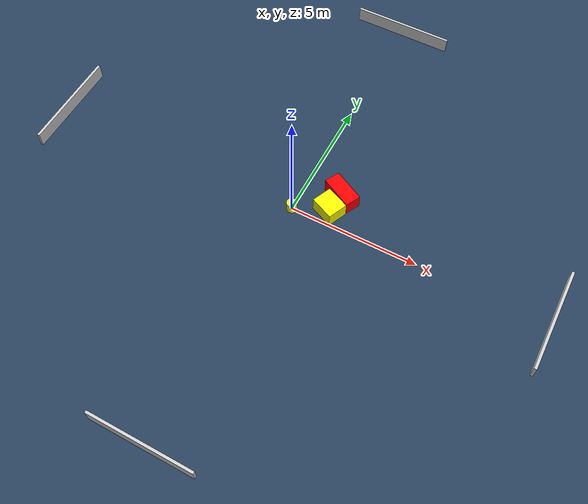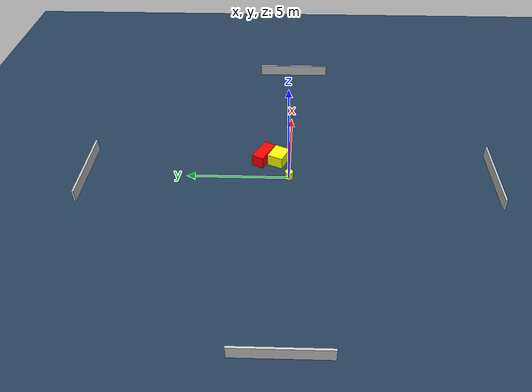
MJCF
<?xml version="1.0" ?>
<mujoco model="generated_environment">
  <option timestep="0.01" integrator="RK4" cone="elliptic"/>
  <default>
    <geom density="1"/>
  </default>
  <asset>
    <texture builtin="gradient" height="3072" name="skybox" rgb1="0.3 0.5 0.7" rgb2="0 0 0" type="skybox" width="512"/>
    <texture builtin="checker" height="300" name="groundplane" rgb1="0.2 0.3 0.4" rgb2="0.1 0.2 0.3" type="2d" width="300"/>
    <material name="groundplane" reflectance="0.2" texrepeat="5 5" texture="groundplane"/>
  </asset>
  <worldbody>
    <light dir="0 0 -1" directional="true" pos="0 0 1.5"/>
    <geom condim="3" friction="0.5 0.005 0.001" material="groundplane" name="floor" pos="0 0 0" size="0 0 0.05" type="plane"/>
    <body name="walls">
      <geom name="wall_1" condim="4" pos="-10.0 0.0 0.3" rgba="0.800000011920929 0.800000011920929 0.800000011920929 1.0" size="0.05 2.0 0.3" type="box"/>
      <geom name="wall_2" condim="4" pos="10.0 0.0 0.3" rgba="0.800000011920929 0.800000011920929 0.800000011920929 1.0" size="0.05 2.0 0.3" type="box"/>
      <geom name="wall_3" condim="4" pos="0.0 -10.0 0.3" rgba="0.800000011920929 0.800000011920929 0.800000011920929 1.0" size="2.0 0.05 0.3" type="box"/>
      <geom name="wall_4" condim="4" pos="0.0 10.0 0.3" rgba="0.800000011920929 0.800000011920929 0.800000011920929 1.0" size="2.0 0.05 0.3" type="box"/>
    </body>
    <body name="robot">
      <joint name="joint_x" type="slide" pos="0 0 0" axis="1 0 0"/>
      <joint name="joint_y" type="slide" pos="0 0 0" axis="0 1 0"/>
      <geom name="robot" type="cylinder" pos="0.0 0.0 0.2" size="0.2 0.2 0.0" mass="5.0" friction="1.0 0.005 0.0001" condim="4" rgba="1.0 1.0 0.0 1.0"/>
    </body>
    <body name="obstacle_1_movable">
      <geom name="obstacle_1_movable" condim="4" pos="1.276069300739611 0.5484838249134135 0.3" euler="0 0 156.1814794306902" friction="0.0 0.005 0.001" rgba="1.0 1.0 0.0 1.0" size="0.4710564485347334 0.39600517779558353 0.3" type="box" mass="0.1"/>
      <joint type="free"/>
    </body>
    <body name="obstacle_2_static">
      <geom name="obstacle_2_static" condim="4" pos="1.4208445193369967 1.3078060963397429 0.3" euler="0 0 152.7730361198795" friction="0.0 0.005 0.001" rgba="1.0 0.0 0.0 1.0" size="0.6545794501588924 0.3061192802819826 0.3" type="box"/>
    </body>
  </worldbody>
  <actuator>
    <motor name="actuator_x" joint="joint_x" gear="1" ctrlrange="-1 1"/>
    <motor name="actuator_y" joint="joint_y" gear="1" ctrlrange="-1 1"/>
  </actuator>
</mujoco>
